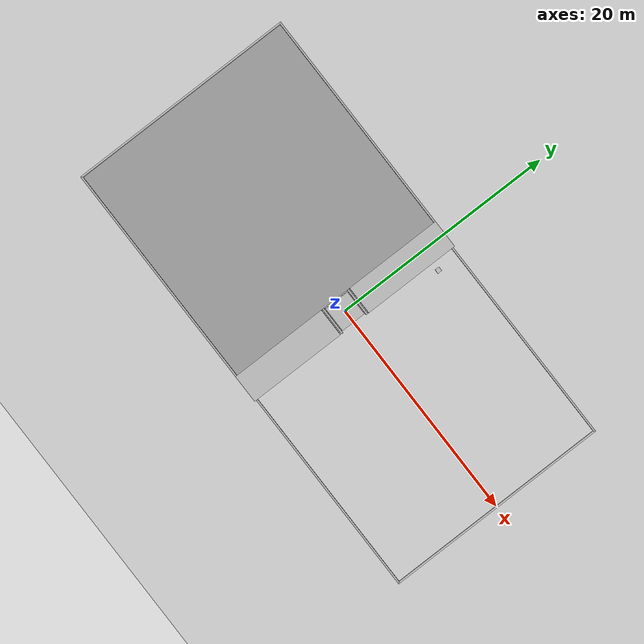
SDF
<sdf version="1.5">
 <world name="default">
  <include><uri>model://sun</uri></include>
  <include><uri>model://ground_plane</uri></include>
  <model name="package">
   <static>false</static>
   <pose>2 8 0.51 0 0 0</pose>
   <link name="link">
    <collision name="collision"><geometry><box><size>0.4 0.4 0.2</size></box></geometry></collision>
    <visual name="visual"><geometry><box><size>0.4 0.4 0.2</size></box></geometry></visual>
   </link>
  </model>
  <model name="elevator">
   <pose>0 0 0.01 0 0 0</pose>
   <link name="link">
    <inertial><mass>800</mass></inertial>
    <collision name="floor_collision"><geometry><box><size>2.25 2.25 0.02</size></box></geometry></collision>
    <visual name="floor_visual"><geometry><box><size>2.25 2.25 0.02</size></box></geometry></visual>
   </link>
  </model>
  <model name="elevator_base">
   <pose>30 0 0 0 0 0</pose>
   <link name="elevator_base_link">
    <inertial><mass>800</mass></inertial>
    <collision name="floor_collision"><geometry><box><size>2 2 4</size></box></geometry></collision>
   </link>
  </model>
  <model name="elevator_shaft">
   <static>true</static>
   <link name="link">
    <collision name="shaft_wall1_collision">
     <pose>0 1.25 2.25 0 0 0</pose>
     <geometry><box><size>2.5 0.15 4.5</size></box></geometry>
    </collision>
    <visual name="shaft_wall1_visual">
     <pose>0 1.25 2.25 0 0 0</pose>
     <geometry><box><size>2.5 0.15 4.5</size></box></geometry>
    </visual>
    <collision name="shaft_wall2_collision">
     <pose>0 -1.25 2.25 0 0 0</pose>
     <geometry><box><size>2.5 0.15 4.5</size></box></geometry>
    </collision>
    <visual name="shaft_wall2_visual">
     <pose>0 -1.25 2.25 0 0 0</pose>
     <geometry><box><size>2.5 0.15 4.5</size></box></geometry>
    </visual>
    <collision name="shaft_wall3_collision">
     <pose>-1.25 0 2 0 0 0</pose>
     <geometry><box><size>0.15 2.7 4</size></box></geometry>
    </collision>
    <visual name="shaft_wall3_visual">
     <pose>-1.25 0 2 0 0 0</pose>
     <geometry><box><size>0.15 2.7 4</size></box></geometry>
    </visual>
   </link>
  </model>
  <model name="wall1">
   <pose>10 10 0.25 0 0 0</pose>
   <static>true</static>
   <link name="link">
    <collision name="collision"><geometry><box><size>20 0.15 0.5</size></box></geometry></collision>
    <visual name="visual"><geometry><box><size>20 0.15 0.5</size></box></geometry></visual>
   </link>
  </model>
  <model name="wall2">
   <pose>10 -10 0.25 0 0 0</pose>
   <static>true</static>
   <link name="link">
    <collision name="collision"><geometry><box><size>20 0.15 0.5</size></box></geometry></collision>
    <visual name="visual"><geometry><box><size>20 0.15 0.5</size></box></geometry></visual>
   </link>
  </model>
  <model name="wall3">
   <pose>20 0 0.25 0 0 0</pose>
   <static>true</static>
   <link name="link">
    <collision name="collision"><geometry><box><size>0.15 20.15 0.5</size></box></geometry></collision>
    <visual name="visual"><geometry><box><size>0.15 20.15 0.5</size></box></geometry></visual>
   </link>
  </model>
  <model name="wall4">
   <pose>0 5.75 2.25 0 0 0</pose>
   <static>true</static>
   <link name="link">
    <collision name="collision"><geometry><box><size>2.5 8.65 4.5</size></box></geometry></collision>
    <visual name="visual"><geometry><box><size>2.5 8.65 4.5</size></box></geometry></visual>
   </link>
  </model>
  <model name="wall5">
   <pose>0 -5.75 2.25 0 0 0</pose>
   <static>true</static>
   <link name="link">
    <collision name="collision"><geometry><box><size>2.5 8.65 4.5</size></box></geometry></collision>
    <visual name="visual"><geometry><box><size>2.5 8.65 4.5</size></box></geometry></visual>
   </link>
  </model>
  <model name="floor1">
   <pose>-11.25 0 2 0 0 0</pose>
   <static>true</static>
   <link name="link">
    <collision name="floor_collision"><geometry><box><size>20 20 4</size></box></geometry></collision>
    <visual name="floor_visual">
     <geometry><box><size>20 20 4</size></box></geometry>
     <material><script><name>Gazebo/Grey</name></script></material>
    </visual>
   </link>
  </model>
  <model name="floor1wall1">
   <pose>-10.65 10 2.25 0 0 0</pose>
   <static>true</static>
   <link name="link">
    <collision name="collision"><geometry><box><size>21.3 0.15 4.5</size></box></geometry></collision>
    <visual name="visual"><geometry><box><size>21.3 0.15 4.5</size></box></geometry></visual>
   </link>
  </model>
  <model name="floor1wall2">
   <pose>-10.65 -10 2.25 0 0 0</pose>
   <static>true</static>
   <link name="link">
    <collision name="collision"><geometry><box><size>21.3 0.15 4.5</size></box></geometry></collision>
    <visual name="visual"><geometry><box><size>21.3 0.15 4.5</size></box></geometry></visual>
   </link>
  </model>
  <model name="floor1wall3">
   <pose>-21.3 0 2.25 0 0 0</pose>
   <static>true</static>
   <link name="link">
    <collision name="collision"><geometry><box><size>0.15 20.15 4.5</size></box></geometry></collision>
    <visual name="visual"><geometry><box><size>0.15 20.15 4.5</size></box></geometry></visual>
   </link>
  </model>
 </world>
</sdf>
